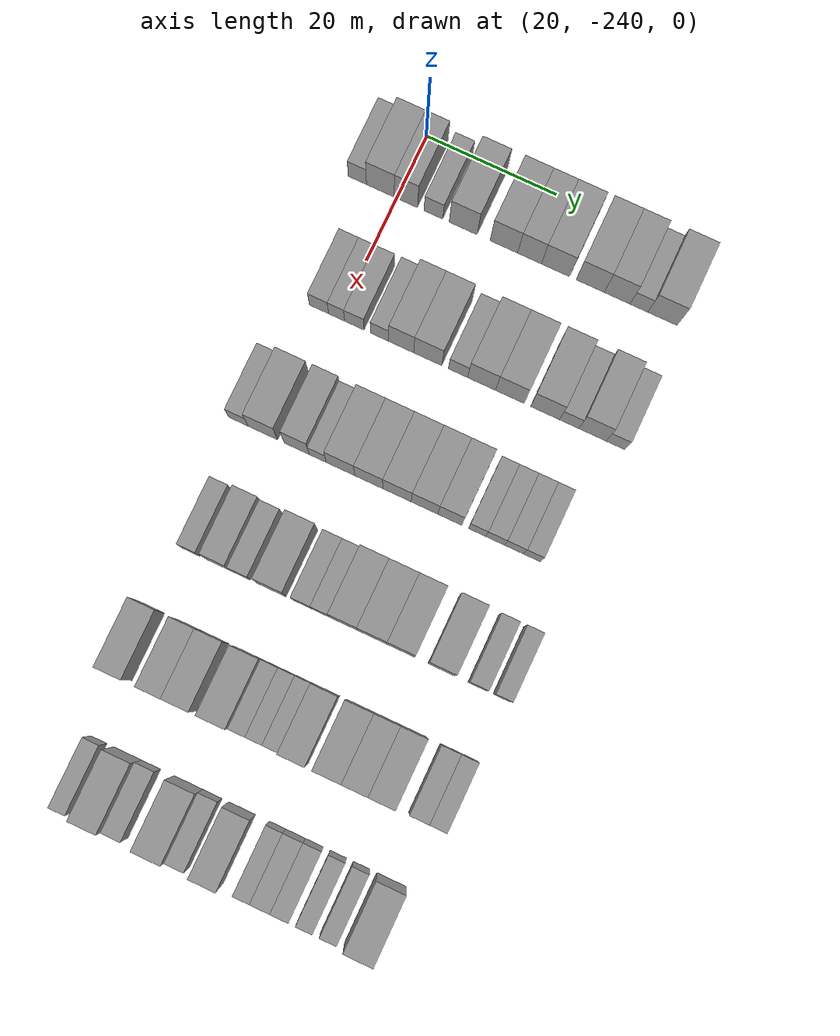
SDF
<sdf version="1.6">
 <world name="default">
  <model name="building_25">
   <static>1</static>
   <pose>25.0000 -246.0931 0 0.000000 0.000000 0.000000</pose>
   <link name="link">
    <pose>0 0 3.00 0 0 0</pose>
    <collision name="collision"><geometry><box><size>10.0000 2.7993 6.0000</size></box></geometry></collision>
    <visual name="visual">
     <cast_shadows>0</cast_shadows>
     <geometry><box><size>10.0000 2.7993 6.0000</size></box></geometry>
     <material>
      <script>
       <uri>model://grey_wall/materials/scripts</uri>
       <uri>model://grey_wall/materials/textures</uri>
       <name>vrc/grey_wall</name>
      </script>
     </material>
    </visual>
   </link>
  </model>
  <model name="building_26">
   <static>1</static>
   <pose>25.0000 -242.5474 0 0.000000 0.000000 0.000000</pose>
   <link name="link">
    <pose>0 0 4.50 0 0 0</pose>
    <collision name="collision"><geometry><box><size>10.0000 4.2921 9.0000</size></box></geometry></collision>
    <visual name="visual">
     <cast_shadows>0</cast_shadows>
     <geometry><box><size>10.0000 4.2921 9.0000</size></box></geometry>
     <material>
      <script>
       <uri>model://grey_wall/materials/scripts</uri>
       <uri>model://grey_wall/materials/textures</uri>
       <name>vrc/grey_wall</name>
      </script>
     </material>
    </visual>
   </link>
  </model>
  <model name="building_27">
   <static>1</static>
   <pose>25.0000 -238.5943 0 0.000000 0.000000 0.000000</pose>
   <link name="link">
    <pose>0 0 4.50 0 0 0</pose>
    <collision name="collision"><geometry><box><size>10.0000 3.6142 9.0000</size></box></geometry></collision>
    <visual name="visual">
     <cast_shadows>0</cast_shadows>
     <geometry><box><size>10.0000 3.6142 9.0000</size></box></geometry>
     <material>
      <script>
       <uri>model://grey_wall/materials/scripts</uri>
       <uri>model://grey_wall/materials/textures</uri>
       <name>vrc/grey_wall</name>
      </script>
     </material>
    </visual>
   </link>
  </model>
  <model name="building_28">
   <static>1</static>
   <pose>25.0000 -234.3465 0 0.000000 0.000000 0.000000</pose>
   <link name="link">
    <pose>0 0 3.00 0 0 0</pose>
    <collision name="collision"><geometry><box><size>10.0000 2.8813 6.0000</size></box></geometry></collision>
    <visual name="visual">
     <cast_shadows>0</cast_shadows>
     <geometry><box><size>10.0000 2.8813 6.0000</size></box></geometry>
     <material>
      <script>
       <uri>model://grey_wall/materials/scripts</uri>
       <uri>model://grey_wall/materials/textures</uri>
       <name>vrc/grey_wall</name>
      </script>
     </material>
    </visual>
   </link>
  </model>
  <model name="building_29">
   <static>1</static>
   <pose>25.0000 -229.7559 0 0.000000 0.000000 0.000000</pose>
   <link name="link">
    <pose>0 0 4.50 0 0 0</pose>
    <collision name="collision"><geometry><box><size>10.0000 4.2998 9.0000</size></box></geometry></collision>
    <visual name="visual">
     <cast_shadows>0</cast_shadows>
     <geometry><box><size>10.0000 4.2998 9.0000</size></box></geometry>
     <material>
      <script>
       <uri>model://grey_wall/materials/scripts</uri>
       <uri>model://grey_wall/materials/textures</uri>
       <name>vrc/grey_wall</name>
      </script>
     </material>
    </visual>
   </link>
  </model>
  <model name="building_30">
   <static>1</static>
   <pose>25.0000 -223.4997 0 0.000000 0.000000 0.000000</pose>
   <link name="link">
    <pose>0 0 4.50 0 0 0</pose>
    <collision name="collision"><geometry><box><size>10.0000 4.2128 9.0000</size></box></geometry></collision>
    <visual name="visual">
     <cast_shadows>0</cast_shadows>
     <geometry><box><size>10.0000 4.2128 9.0000</size></box></geometry>
     <material>
      <script>
       <uri>model://grey_wall/materials/scripts</uri>
       <uri>model://grey_wall/materials/textures</uri>
       <name>vrc/grey_wall</name>
      </script>
     </material>
    </visual>
   </link>
  </model>
  <model name="building_31">
   <static>1</static>
   <pose>25.0000 -219.5644 0 0.000000 0.000000 0.000000</pose>
   <link name="link">
    <pose>0 0 4.50 0 0 0</pose>
    <collision name="collision"><geometry><box><size>10.0000 3.6578 9.0000</size></box></geometry></collision>
    <visual name="visual">
     <cast_shadows>0</cast_shadows>
     <geometry><box><size>10.0000 3.6578 9.0000</size></box></geometry>
     <material>
      <script>
       <uri>model://grey_wall/materials/scripts</uri>
       <uri>model://grey_wall/materials/textures</uri>
       <name>vrc/grey_wall</name>
      </script>
     </material>
    </visual>
   </link>
  </model>
  <model name="building_32">
   <static>1</static>
   <pose>25.0000 -215.5783 0 0.000000 0.000000 0.000000</pose>
   <link name="link">
    <pose>0 0 4.50 0 0 0</pose>
    <collision name="collision"><geometry><box><size>10.0000 4.3143 9.0000</size></box></geometry></collision>
    <visual name="visual">
     <cast_shadows>0</cast_shadows>
     <geometry><box><size>10.0000 4.3143 9.0000</size></box></geometry>
     <material>
      <script>
       <uri>model://grey_wall/materials/scripts</uri>
       <uri>model://grey_wall/materials/textures</uri>
       <name>vrc/grey_wall</name>
      </script>
     </material>
    </visual>
   </link>
  </model>
  <model name="building_33">
   <static>1</static>
   <pose>25.0000 -210.2812 0 0.000000 0.000000 0.000000</pose>
   <link name="link">
    <pose>0 0 4.50 0 0 0</pose>
    <collision name="collision"><geometry><box><size>10.0000 4.2799 9.0000</size></box></geometry></collision>
    <visual name="visual">
     <cast_shadows>0</cast_shadows>
     <geometry><box><size>10.0000 4.2799 9.0000</size></box></geometry>
     <material>
      <script>
       <uri>model://grey_wall/materials/scripts</uri>
       <uri>model://grey_wall/materials/textures</uri>
       <name>vrc/grey_wall</name>
      </script>
     </material>
    </visual>
   </link>
  </model>
  <model name="building_34">
   <static>1</static>
   <pose>25.0000 -206.1762 0 0.000000 0.000000 0.000000</pose>
   <link name="link">
    <pose>0 0 4.50 0 0 0</pose>
    <collision name="collision"><geometry><box><size>10.0000 3.9302 9.0000</size></box></geometry></collision>
    <visual name="visual">
     <cast_shadows>0</cast_shadows>
     <geometry><box><size>10.0000 3.9302 9.0000</size></box></geometry>
     <material>
      <script>
       <uri>model://grey_wall/materials/scripts</uri>
       <uri>model://grey_wall/materials/textures</uri>
       <name>vrc/grey_wall</name>
      </script>
     </material>
    </visual>
   </link>
  </model>
  <model name="building_35">
   <static>1</static>
   <pose>25.0000 -202.8672 0 0.000000 0.000000 0.000000</pose>
   <link name="link">
    <pose>0 0 3.00 0 0 0</pose>
    <collision name="collision"><geometry><box><size>10.0000 2.6878 6.0000</size></box></geometry></collision>
    <visual name="visual">
     <cast_shadows>0</cast_shadows>
     <geometry><box><size>10.0000 2.6878 6.0000</size></box></geometry>
     <material>
      <script>
       <uri>model://grey_wall/materials/scripts</uri>
       <uri>model://grey_wall/materials/textures</uri>
       <name>vrc/grey_wall</name>
      </script>
     </material>
    </visual>
   </link>
  </model>
  <model name="building_36">
   <static>1</static>
   <pose>25.0000 -199.2933 0 0.000000 0.000000 0.000000</pose>
   <link name="link">
    <pose>0 0 4.50 0 0 0</pose>
    <collision name="collision"><geometry><box><size>10.0000 4.4602 9.0000</size></box></geometry></collision>
    <visual name="visual">
     <cast_shadows>0</cast_shadows>
     <geometry><box><size>10.0000 4.4602 9.0000</size></box></geometry>
     <material>
      <script>
       <uri>model://grey_wall/materials/scripts</uri>
       <uri>model://grey_wall/materials/textures</uri>
       <name>vrc/grey_wall</name>
      </script>
     </material>
    </visual>
   </link>
  </model>
  <model name="building_196">
   <static>1</static>
   <pose>44.0000 -243.0084 0 0.000000 0.000000 0.000000</pose>
   <link name="link">
    <pose>0 0 3.00 0 0 0</pose>
    <collision name="collision"><geometry><box><size>10.0000 2.9527 6.0000</size></box></geometry></collision>
    <visual name="visual">
     <cast_shadows>0</cast_shadows>
     <geometry><box><size>10.0000 2.9527 6.0000</size></box></geometry>
     <material>
      <script>
       <uri>model://grey_wall/materials/scripts</uri>
       <uri>model://grey_wall/materials/textures</uri>
       <name>vrc/grey_wall</name>
      </script>
     </material>
    </visual>
   </link>
  </model>
  <model name="building_197">
   <static>1</static>
   <pose>44.0000 -240.3116 0 0.000000 0.000000 0.000000</pose>
   <link name="link">
    <pose>0 0 3.00 0 0 0</pose>
    <collision name="collision"><geometry><box><size>10.0000 2.4408 6.0000</size></box></geometry></collision>
    <visual name="visual">
     <cast_shadows>0</cast_shadows>
     <geometry><box><size>10.0000 2.4408 6.0000</size></box></geometry>
     <material>
      <script>
       <uri>model://grey_wall/materials/scripts</uri>
       <uri>model://grey_wall/materials/textures</uri>
       <name>vrc/grey_wall</name>
      </script>
     </material>
    </visual>
   </link>
  </model>
  <model name="building_198">
   <static>1</static>
   <pose>44.0000 -237.5992 0 0.000000 0.000000 0.000000</pose>
   <link name="link">
    <pose>0 0 3.00 0 0 0</pose>
    <collision name="collision"><geometry><box><size>10.0000 2.9841 6.0000</size></box></geometry></collision>
    <visual name="visual">
     <cast_shadows>0</cast_shadows>
     <geometry><box><size>10.0000 2.9841 6.0000</size></box></geometry>
     <material>
      <script>
       <uri>model://grey_wall/materials/scripts</uri>
       <uri>model://grey_wall/materials/textures</uri>
       <name>vrc/grey_wall</name>
      </script>
     </material>
    </visual>
   </link>
  </model>
  <model name="building_199">
   <static>1</static>
   <pose>44.0000 -233.7240 0 0.000000 0.000000 0.000000</pose>
   <link name="link">
    <pose>0 0 3.00 0 0 0</pose>
    <collision name="collision"><geometry><box><size>10.0000 2.7663 6.0000</size></box></geometry></collision>
    <visual name="visual">
     <cast_shadows>0</cast_shadows>
     <geometry><box><size>10.0000 2.7663 6.0000</size></box></geometry>
     <material>
      <script>
       <uri>model://grey_wall/materials/scripts</uri>
       <uri>model://grey_wall/materials/textures</uri>
       <name>vrc/grey_wall</name>
      </script>
     </material>
    </visual>
   </link>
  </model>
  <model name="building_200">
   <static>1</static>
   <pose>44.0000 -230.4372 0 0.000000 0.000000 0.000000</pose>
   <link name="link">
    <pose>0 0 4.50 0 0 0</pose>
    <collision name="collision"><geometry><box><size>10.0000 3.8072 9.0000</size></box></geometry></collision>
    <visual name="visual">
     <cast_shadows>0</cast_shadows>
     <geometry><box><size>10.0000 3.8072 9.0000</size></box></geometry>
     <material>
      <script>
       <uri>model://grey_wall/materials/scripts</uri>
       <uri>model://grey_wall/materials/textures</uri>
       <name>vrc/grey_wall</name>
      </script>
     </material>
    </visual>
   </link>
  </model>
  <model name="building_201">
   <static>1</static>
   <pose>44.0000 -226.3860 0 0.000000 0.000000 0.000000</pose>
   <link name="link">
    <pose>0 0 4.50 0 0 0</pose>
    <collision name="collision"><geometry><box><size>10.0000 4.2951 9.0000</size></box></geometry></collision>
    <visual name="visual">
     <cast_shadows>0</cast_shadows>
     <geometry><box><size>10.0000 4.2951 9.0000</size></box></geometry>
     <material>
      <script>
       <uri>model://grey_wall/materials/scripts</uri>
       <uri>model://grey_wall/materials/textures</uri>
       <name>vrc/grey_wall</name>
      </script>
     </material>
    </visual>
   </link>
  </model>
  <model name="building_202">
   <static>1</static>
   <pose>44.0000 -221.7757 0 0.000000 0.000000 0.000000</pose>
   <link name="link">
    <pose>0 0 3.00 0 0 0</pose>
    <collision name="collision"><geometry><box><size>10.0000 2.9257 6.0000</size></box></geometry></collision>
    <visual name="visual">
     <cast_shadows>0</cast_shadows>
     <geometry><box><size>10.0000 2.9257 6.0000</size></box></geometry>
     <material>
      <script>
       <uri>model://grey_wall/materials/scripts</uri>
       <uri>model://grey_wall/materials/textures</uri>
       <name>vrc/grey_wall</name>
      </script>
     </material>
    </visual>
   </link>
  </model>
  <model name="building_203">
   <static>1</static>
   <pose>44.0000 -218.1892 0 0.000000 0.000000 0.000000</pose>
   <link name="link">
    <pose>0 0 4.50 0 0 0</pose>
    <collision name="collision"><geometry><box><size>10.0000 4.2473 9.0000</size></box></geometry></collision>
    <visual name="visual">
     <cast_shadows>0</cast_shadows>
     <geometry><box><size>10.0000 4.2473 9.0000</size></box></geometry>
     <material>
      <script>
       <uri>model://grey_wall/materials/scripts</uri>
       <uri>model://grey_wall/materials/textures</uri>
       <name>vrc/grey_wall</name>
      </script>
     </material>
    </visual>
   </link>
  </model>
  <model name="building_204">
   <static>1</static>
   <pose>44.0000 -213.9029 0 0.000000 0.000000 0.000000</pose>
   <link name="link">
    <pose>0 0 4.50 0 0 0</pose>
    <collision name="collision"><geometry><box><size>10.0000 4.3253 9.0000</size></box></geometry></collision>
    <visual name="visual">
     <cast_shadows>0</cast_shadows>
     <geometry><box><size>10.0000 4.3253 9.0000</size></box></geometry>
     <material>
      <script>
       <uri>model://grey_wall/materials/scripts</uri>
       <uri>model://grey_wall/materials/textures</uri>
       <name>vrc/grey_wall</name>
      </script>
     </material>
    </visual>
   </link>
  </model>
  <model name="building_205">
   <static>1</static>
   <pose>44.0000 -208.5619 0 0.000000 0.000000 0.000000</pose>
   <link name="link">
    <pose>0 0 4.50 0 0 0</pose>
    <collision name="collision"><geometry><box><size>10.0000 4.3569 9.0000</size></box></geometry></collision>
    <visual name="visual">
     <cast_shadows>0</cast_shadows>
     <geometry><box><size>10.0000 4.3569 9.0000</size></box></geometry>
     <material>
      <script>
       <uri>model://grey_wall/materials/scripts</uri>
       <uri>model://grey_wall/materials/textures</uri>
       <name>vrc/grey_wall</name>
      </script>
     </material>
    </visual>
   </link>
  </model>
  <model name="building_206">
   <static>1</static>
   <pose>44.0000 -204.9178 0 0.000000 0.000000 0.000000</pose>
   <link name="link">
    <pose>0 0 3.00 0 0 0</pose>
    <collision name="collision"><geometry><box><size>10.0000 2.9314 6.0000</size></box></geometry></collision>
    <visual name="visual">
     <cast_shadows>0</cast_shadows>
     <geometry><box><size>10.0000 2.9314 6.0000</size></box></geometry>
     <material>
      <script>
       <uri>model://grey_wall/materials/scripts</uri>
       <uri>model://grey_wall/materials/textures</uri>
       <name>vrc/grey_wall</name>
      </script>
     </material>
    </visual>
   </link>
  </model>
  <model name="building_207">
   <static>1</static>
   <pose>44.0000 -201.3960 0 0.000000 0.000000 0.000000</pose>
   <link name="link">
    <pose>0 0 4.50 0 0 0</pose>
    <collision name="collision"><geometry><box><size>10.0000 4.1122 9.0000</size></box></geometry></collision>
    <visual name="visual">
     <cast_shadows>0</cast_shadows>
     <geometry><box><size>10.0000 4.1122 9.0000</size></box></geometry>
     <material>
      <script>
       <uri>model://grey_wall/materials/scripts</uri>
       <uri>model://grey_wall/materials/textures</uri>
       <name>vrc/grey_wall</name>
      </script>
     </material>
    </visual>
   </link>
  </model>
  <model name="building_208">
   <static>1</static>
   <pose>44.0000 -197.9225 0 0.000000 0.000000 0.000000</pose>
   <link name="link">
    <pose>0 0 3.00 0 0 0</pose>
    <collision name="collision"><geometry><box><size>10.0000 2.8347 6.0000</size></box></geometry></collision>
    <visual name="visual">
     <cast_shadows>0</cast_shadows>
     <geometry><box><size>10.0000 2.8347 6.0000</size></box></geometry>
     <material>
      <script>
       <uri>model://grey_wall/materials/scripts</uri>
       <uri>model://grey_wall/materials/textures</uri>
       <name>vrc/grey_wall</name>
      </script>
     </material>
    </visual>
   </link>
  </model>
  <model name="building_367">
   <static>1</static>
   <pose>63.0000 -246.2643 0 0.000000 0.000000 0.000000</pose>
   <link name="link">
    <pose>0 0 3.00 0 0 0</pose>
    <collision name="collision"><geometry><box><size>10.0000 2.9558 6.0000</size></box></geometry></collision>
    <visual name="visual">
     <cast_shadows>0</cast_shadows>
     <geometry><box><size>10.0000 2.9558 6.0000</size></box></geometry>
     <material>
      <script>
       <uri>model://grey_wall/materials/scripts</uri>
       <uri>model://grey_wall/materials/textures</uri>
       <name>vrc/grey_wall</name>
      </script>
     </material>
    </visual>
   </link>
  </model>
  <model name="building_368">
   <static>1</static>
   <pose>63.0000 -242.5374 0 0.000000 0.000000 0.000000</pose>
   <link name="link">
    <pose>0 0 4.50 0 0 0</pose>
    <collision name="collision"><geometry><box><size>10.0000 4.4980 9.0000</size></box></geometry></collision>
    <visual name="visual">
     <cast_shadows>0</cast_shadows>
     <geometry><box><size>10.0000 4.4980 9.0000</size></box></geometry>
     <material>
      <script>
       <uri>model://grey_wall/materials/scripts</uri>
       <uri>model://grey_wall/materials/textures</uri>
       <name>vrc/grey_wall</name>
      </script>
     </material>
    </visual>
   </link>
  </model>
  <model name="building_369">
   <static>1</static>
   <pose>63.0000 -237.3913 0 0.000000 0.000000 0.000000</pose>
   <link name="link">
    <pose>0 0 4.50 0 0 0</pose>
    <collision name="collision"><geometry><box><size>10.0000 3.7943 9.0000</size></box></geometry></collision>
    <visual name="visual">
     <cast_shadows>0</cast_shadows>
     <geometry><box><size>10.0000 3.7943 9.0000</size></box></geometry>
     <material>
      <script>
       <uri>model://grey_wall/materials/scripts</uri>
       <uri>model://grey_wall/materials/textures</uri>
       <name>vrc/grey_wall</name>
      </script>
     </material>
    </visual>
   </link>
  </model>
  <model name="building_370">
   <static>1</static>
   <pose>63.0000 -234.1962 0 0.000000 0.000000 0.000000</pose>
   <link name="link">
    <pose>0 0 3.00 0 0 0</pose>
    <collision name="collision"><geometry><box><size>10.0000 2.5958 6.0000</size></box></geometry></collision>
    <visual name="visual">
     <cast_shadows>0</cast_shadows>
     <geometry><box><size>10.0000 2.5958 6.0000</size></box></geometry>
     <material>
      <script>
       <uri>model://grey_wall/materials/scripts</uri>
       <uri>model://grey_wall/materials/textures</uri>
       <name>vrc/grey_wall</name>
      </script>
     </material>
    </visual>
   </link>
  </model>
  <model name="building_371">
   <static>1</static>
   <pose>63.0000 -230.7413 0 0.000000 0.000000 0.000000</pose>
   <link name="link">
    <pose>0 0 4.50 0 0 0</pose>
    <collision name="collision"><geometry><box><size>10.0000 4.3141 9.0000</size></box></geometry></collision>
    <visual name="visual">
     <cast_shadows>0</cast_shadows>
     <geometry><box><size>10.0000 4.3141 9.0000</size></box></geometry>
     <material>
      <script>
       <uri>model://grey_wall/materials/scripts</uri>
       <uri>model://grey_wall/materials/textures</uri>
       <name>vrc/grey_wall</name>
      </script>
     </material>
    </visual>
   </link>
  </model>
  <model name="building_372">
   <static>1</static>
   <pose>63.0000 -226.4671 0 0.000000 0.000000 0.000000</pose>
   <link name="link">
    <pose>0 0 4.50 0 0 0</pose>
    <collision name="collision"><geometry><box><size>10.0000 4.2344 9.0000</size></box></geometry></collision>
    <visual name="visual">
     <cast_shadows>0</cast_shadows>
     <geometry><box><size>10.0000 4.2344 9.0000</size></box></geometry>
     <material>
      <script>
       <uri>model://grey_wall/materials/scripts</uri>
       <uri>model://grey_wall/materials/textures</uri>
       <name>vrc/grey_wall</name>
      </script>
     </material>
    </visual>
   </link>
  </model>
  <model name="building_373">
   <static>1</static>
   <pose>63.0000 -222.2003 0 0.000000 0.000000 0.000000</pose>
   <link name="link">
    <pose>0 0 4.50 0 0 0</pose>
    <collision name="collision"><geometry><box><size>10.0000 4.2993 9.0000</size></box></geometry></collision>
    <visual name="visual">
     <cast_shadows>0</cast_shadows>
     <geometry><box><size>10.0000 4.2993 9.0000</size></box></geometry>
     <material>
      <script>
       <uri>model://grey_wall/materials/scripts</uri>
       <uri>model://grey_wall/materials/textures</uri>
       <name>vrc/grey_wall</name>
      </script>
     </material>
    </visual>
   </link>
  </model>
  <model name="building_374">
   <static>1</static>
   <pose>63.0000 -218.0457 0 0.000000 0.000000 0.000000</pose>
   <link name="link">
    <pose>0 0 4.50 0 0 0</pose>
    <collision name="collision"><geometry><box><size>10.0000 4.0099 9.0000</size></box></geometry></collision>
    <visual name="visual">
     <cast_shadows>0</cast_shadows>
     <geometry><box><size>10.0000 4.0099 9.0000</size></box></geometry>
     <material>
      <script>
       <uri>model://grey_wall/materials/scripts</uri>
       <uri>model://grey_wall/materials/textures</uri>
       <name>vrc/grey_wall</name>
      </script>
     </material>
    </visual>
   </link>
  </model>
  <model name="building_375">
   <static>1</static>
   <pose>63.0000 -214.2318 0 0.000000 0.000000 0.000000</pose>
   <link name="link">
    <pose>0 0 4.50 0 0 0</pose>
    <collision name="collision"><geometry><box><size>10.0000 3.6179 9.0000</size></box></geometry></collision>
    <visual name="visual">
     <cast_shadows>0</cast_shadows>
     <geometry><box><size>10.0000 3.6179 9.0000</size></box></geometry>
     <material>
      <script>
       <uri>model://grey_wall/materials/scripts</uri>
       <uri>model://grey_wall/materials/textures</uri>
       <name>vrc/grey_wall</name>
      </script>
     </material>
    </visual>
   </link>
  </model>
  <model name="building_376">
   <static>1</static>
   <pose>63.0000 -210.1244 0 0.000000 0.000000 0.000000</pose>
   <link name="link">
    <pose>0 0 3.00 0 0 0</pose>
    <collision name="collision"><geometry><box><size>10.0000 2.5969 6.0000</size></box></geometry></collision>
    <visual name="visual">
     <cast_shadows>0</cast_shadows>
     <geometry><box><size>10.0000 2.5969 6.0000</size></box></geometry>
     <material>
      <script>
       <uri>model://grey_wall/materials/scripts</uri>
       <uri>model://grey_wall/materials/textures</uri>
       <name>vrc/grey_wall</name>
      </script>
     </material>
    </visual>
   </link>
  </model>
  <model name="building_377">
   <static>1</static>
   <pose>63.0000 -207.4161 0 0.000000 0.000000 0.000000</pose>
   <link name="link">
    <pose>0 0 3.00 0 0 0</pose>
    <collision name="collision"><geometry><box><size>10.0000 2.8196 6.0000</size></box></geometry></collision>
    <visual name="visual">
     <cast_shadows>0</cast_shadows>
     <geometry><box><size>10.0000 2.8196 6.0000</size></box></geometry>
     <material>
      <script>
       <uri>model://grey_wall/materials/scripts</uri>
       <uri>model://grey_wall/materials/textures</uri>
       <name>vrc/grey_wall</name>
      </script>
     </material>
    </visual>
   </link>
  </model>
  <model name="building_378">
   <static>1</static>
   <pose>63.0000 -204.5809 0 0.000000 0.000000 0.000000</pose>
   <link name="link">
    <pose>0 0 3.00 0 0 0</pose>
    <collision name="collision"><geometry><box><size>10.0000 2.8508 6.0000</size></box></geometry></collision>
    <visual name="visual">
     <cast_shadows>0</cast_shadows>
     <geometry><box><size>10.0000 2.8508 6.0000</size></box></geometry>
     <material>
      <script>
       <uri>model://grey_wall/materials/scripts</uri>
       <uri>model://grey_wall/materials/textures</uri>
       <name>vrc/grey_wall</name>
      </script>
     </material>
    </visual>
   </link>
  </model>
  <model name="building_379">
   <static>1</static>
   <pose>63.0000 -201.9021 0 0.000000 0.000000 0.000000</pose>
   <link name="link">
    <pose>0 0 3.00 0 0 0</pose>
    <collision name="collision"><geometry><box><size>10.0000 2.5069 6.0000</size></box></geometry></collision>
    <visual name="visual">
     <cast_shadows>0</cast_shadows>
     <geometry><box><size>10.0000 2.5069 6.0000</size></box></geometry>
     <material>
      <script>
       <uri>model://grey_wall/materials/scripts</uri>
       <uri>model://grey_wall/materials/textures</uri>
       <name>vrc/grey_wall</name>
      </script>
     </material>
    </visual>
   </link>
  </model>
  <model name="building_549">
   <static>1</static>
   <pose>82.0000 -244.2648 0 0.000000 0.000000 0.000000</pose>
   <link name="link">
    <pose>0 0 3.00 0 0 0</pose>
    <collision name="collision"><geometry><box><size>10.0000 2.7440 6.0000</size></box></geometry></collision>
    <visual name="visual">
     <cast_shadows>0</cast_shadows>
     <geometry><box><size>10.0000 2.7440 6.0000</size></box></geometry>
     <material>
      <script>
       <uri>model://grey_wall/materials/scripts</uri>
       <uri>model://grey_wall/materials/textures</uri>
       <name>vrc/grey_wall</name>
      </script>
     </material>
    </visual>
   </link>
  </model>
  <model name="building_550">
   <static>1</static>
   <pose>82.0000 -240.0662 0 0.000000 0.000000 0.000000</pose>
   <link name="link">
    <pose>0 0 4.50 0 0 0</pose>
    <collision name="collision"><geometry><box><size>10.0000 3.6531 9.0000</size></box></geometry></collision>
    <visual name="visual">
     <cast_shadows>0</cast_shadows>
     <geometry><box><size>10.0000 3.6531 9.0000</size></box></geometry>
     <material>
      <script>
       <uri>model://grey_wall/materials/scripts</uri>
       <uri>model://grey_wall/materials/textures</uri>
       <name>vrc/grey_wall</name>
      </script>
     </material>
    </visual>
   </link>
  </model>
  <model name="building_551">
   <static>1</static>
   <pose>82.0000 -236.7481 0 0.000000 0.000000 0.000000</pose>
   <link name="link">
    <pose>0 0 3.00 0 0 0</pose>
    <collision name="collision"><geometry><box><size>10.0000 2.9830 6.0000</size></box></geometry></collision>
    <visual name="visual">
     <cast_shadows>0</cast_shadows>
     <geometry><box><size>10.0000 2.9830 6.0000</size></box></geometry>
     <material>
      <script>
       <uri>model://grey_wall/materials/scripts</uri>
       <uri>model://grey_wall/materials/textures</uri>
       <name>vrc/grey_wall</name>
      </script>
     </material>
    </visual>
   </link>
  </model>
  <model name="building_552">
   <static>1</static>
   <pose>82.0000 -232.0917 0 0.000000 0.000000 0.000000</pose>
   <link name="link">
    <pose>0 0 4.50 0 0 0</pose>
    <collision name="collision"><geometry><box><size>10.0000 4.3299 9.0000</size></box></geometry></collision>
    <visual name="visual">
     <cast_shadows>0</cast_shadows>
     <geometry><box><size>10.0000 4.3299 9.0000</size></box></geometry>
     <material>
      <script>
       <uri>model://grey_wall/materials/scripts</uri>
       <uri>model://grey_wall/materials/textures</uri>
       <name>vrc/grey_wall</name>
      </script>
     </material>
    </visual>
   </link>
  </model>
  <model name="building_553">
   <static>1</static>
   <pose>82.0000 -227.4940 0 0.000000 0.000000 0.000000</pose>
   <link name="link">
    <pose>0 0 3.00 0 0 0</pose>
    <collision name="collision"><geometry><box><size>10.0000 2.8654 6.0000</size></box></geometry></collision>
    <visual name="visual">
     <cast_shadows>0</cast_shadows>
     <geometry><box><size>10.0000 2.8654 6.0000</size></box></geometry>
     <material>
      <script>
       <uri>model://grey_wall/materials/scripts</uri>
       <uri>model://grey_wall/materials/textures</uri>
       <name>vrc/grey_wall</name>
      </script>
     </material>
    </visual>
   </link>
  </model>
  <model name="building_554">
   <static>1</static>
   <pose>82.0000 -224.7215 0 0.000000 0.000000 0.000000</pose>
   <link name="link">
    <pose>0 0 3.00 0 0 0</pose>
    <collision name="collision"><geometry><box><size>10.0000 2.6796 6.0000</size></box></geometry></collision>
    <visual name="visual">
     <cast_shadows>0</cast_shadows>
     <geometry><box><size>10.0000 2.6796 6.0000</size></box></geometry>
     <material>
      <script>
       <uri>model://grey_wall/materials/scripts</uri>
       <uri>model://grey_wall/materials/textures</uri>
       <name>vrc/grey_wall</name>
      </script>
     </material>
    </visual>
   </link>
  </model>
  <model name="building_555">
   <static>1</static>
   <pose>82.0000 -221.2757 0 0.000000 0.000000 0.000000</pose>
   <link name="link">
    <pose>0 0 4.50 0 0 0</pose>
    <collision name="collision"><geometry><box><size>10.0000 4.2120 9.0000</size></box></geometry></collision>
    <visual name="visual">
     <cast_shadows>0</cast_shadows>
     <geometry><box><size>10.0000 4.2120 9.0000</size></box></geometry>
     <material>
      <script>
       <uri>model://grey_wall/materials/scripts</uri>
       <uri>model://grey_wall/materials/textures</uri>
       <name>vrc/grey_wall</name>
      </script>
     </material>
    </visual>
   </link>
  </model>
  <model name="building_556">
   <static>1</static>
   <pose>82.0000 -216.9725 0 0.000000 0.000000 0.000000</pose>
   <link name="link">
    <pose>0 0 4.50 0 0 0</pose>
    <collision name="collision"><geometry><box><size>10.0000 4.3943 9.0000</size></box></geometry></collision>
    <visual name="visual">
     <cast_shadows>0</cast_shadows>
     <geometry><box><size>10.0000 4.3943 9.0000</size></box></geometry>
     <material>
      <script>
       <uri>model://grey_wall/materials/scripts</uri>
       <uri>model://grey_wall/materials/textures</uri>
       <name>vrc/grey_wall</name>
      </script>
     </material>
    </visual>
   </link>
  </model>
  <model name="building_557">
   <static>1</static>
   <pose>82.0000 -212.7305 0 0.000000 0.000000 0.000000</pose>
   <link name="link">
    <pose>0 0 4.50 0 0 0</pose>
    <collision name="collision"><geometry><box><size>10.0000 4.0896 9.0000</size></box></geometry></collision>
    <visual name="visual">
     <cast_shadows>0</cast_shadows>
     <geometry><box><size>10.0000 4.0896 9.0000</size></box></geometry>
     <material>
      <script>
       <uri>model://grey_wall/materials/scripts</uri>
       <uri>model://grey_wall/materials/textures</uri>
       <name>vrc/grey_wall</name>
      </script>
     </material>
    </visual>
   </link>
  </model>
  <model name="building_558">
   <static>1</static>
   <pose>82.0000 -206.7186 0 0.000000 0.000000 0.000000</pose>
   <link name="link">
    <pose>0 0 4.50 0 0 0</pose>
    <collision name="collision"><geometry><box><size>10.0000 3.9342 9.0000</size></box></geometry></collision>
    <visual name="visual">
     <cast_shadows>0</cast_shadows>
     <geometry><box><size>10.0000 3.9342 9.0000</size></box></geometry>
     <material>
      <script>
       <uri>model://grey_wall/materials/scripts</uri>
       <uri>model://grey_wall/materials/textures</uri>
       <name>vrc/grey_wall</name>
      </script>
     </material>
    </visual>
   </link>
  </model>
  <model name="building_559">
   <static>1</static>
   <pose>82.0000 -201.3870 0 0.000000 0.000000 0.000000</pose>
   <link name="link">
    <pose>0 0 3.00 0 0 0</pose>
    <collision name="collision"><geometry><box><size>10.0000 2.7289 6.0000</size></box></geometry></collision>
    <visual name="visual">
     <cast_shadows>0</cast_shadows>
     <geometry><box><size>10.0000 2.7289 6.0000</size></box></geometry>
     <material>
      <script>
       <uri>model://grey_wall/materials/scripts</uri>
       <uri>model://grey_wall/materials/textures</uri>
       <name>vrc/grey_wall</name>
      </script>
     </material>
    </visual>
   </link>
  </model>
  <model name="building_560">
   <static>1</static>
   <pose>82.0000 -197.7768 0 0.000000 0.000000 0.000000</pose>
   <link name="link">
    <pose>0 0 3.00 0 0 0</pose>
    <collision name="collision"><geometry><box><size>10.0000 2.4915 6.0000</size></box></geometry></collision>
    <visual name="visual">
     <cast_shadows>0</cast_shadows>
     <geometry><box><size>10.0000 2.4915 6.0000</size></box></geometry>
     <material>
      <script>
       <uri>model://grey_wall/materials/scripts</uri>
       <uri>model://grey_wall/materials/textures</uri>
       <name>vrc/grey_wall</name>
      </script>
     </material>
    </visual>
   </link>
  </model>
  <model name="building_720">
   <static>1</static>
   <pose>101.0000 -245.8715 0 0.000000 0.000000 0.000000</pose>
   <link name="link">
    <pose>0 0 4.50 0 0 0</pose>
    <collision name="collision"><geometry><box><size>10.0000 3.9570 9.0000</size></box></geometry></collision>
    <visual name="visual">
     <cast_shadows>0</cast_shadows>
     <geometry><box><size>10.0000 3.9570 9.0000</size></box></geometry>
     <material>
      <script>
       <uri>model://grey_wall/materials/scripts</uri>
       <uri>model://grey_wall/materials/textures</uri>
       <name>vrc/grey_wall</name>
      </script>
     </material>
    </visual>
   </link>
  </model>
  <model name="building_721">
   <static>1</static>
   <pose>101.0000 -240.0434 0 0.000000 0.000000 0.000000</pose>
   <link name="link">
    <pose>0 0 4.50 0 0 0</pose>
    <collision name="collision"><geometry><box><size>10.0000 3.6993 9.0000</size></box></geometry></collision>
    <visual name="visual">
     <cast_shadows>0</cast_shadows>
     <geometry><box><size>10.0000 3.6993 9.0000</size></box></geometry>
     <material>
      <script>
       <uri>model://grey_wall/materials/scripts</uri>
       <uri>model://grey_wall/materials/textures</uri>
       <name>vrc/grey_wall</name>
      </script>
     </material>
    </visual>
   </link>
  </model>
  <model name="building_722">
   <static>1</static>
   <pose>101.0000 -236.1895 0 0.000000 0.000000 0.000000</pose>
   <link name="link">
    <pose>0 0 4.50 0 0 0</pose>
    <collision name="collision"><geometry><box><size>10.0000 4.0083 9.0000</size></box></geometry></collision>
    <visual name="visual">
     <cast_shadows>0</cast_shadows>
     <geometry><box><size>10.0000 4.0083 9.0000</size></box></geometry>
     <material>
      <script>
       <uri>model://grey_wall/materials/scripts</uri>
       <uri>model://grey_wall/materials/textures</uri>
       <name>vrc/grey_wall</name>
      </script>
     </material>
    </visual>
   </link>
  </model>
  <model name="building_723">
   <static>1</static>
   <pose>101.0000 -231.0649 0 0.000000 0.000000 0.000000</pose>
   <link name="link">
    <pose>0 0 4.50 0 0 0</pose>
    <collision name="collision"><geometry><box><size>10.0000 4.2409 9.0000</size></box></geometry></collision>
    <visual name="visual">
     <cast_shadows>0</cast_shadows>
     <geometry><box><size>10.0000 4.2409 9.0000</size></box></geometry>
     <material>
      <script>
       <uri>model://grey_wall/materials/scripts</uri>
       <uri>model://grey_wall/materials/textures</uri>
       <name>vrc/grey_wall</name>
      </script>
     </material>
    </visual>
   </link>
  </model>
  <model name="building_724">
   <static>1</static>
   <pose>101.0000 -227.6793 0 0.000000 0.000000 0.000000</pose>
   <link name="link">
    <pose>0 0 3.00 0 0 0</pose>
    <collision name="collision"><geometry><box><size>10.0000 2.5302 6.0000</size></box></geometry></collision>
    <visual name="visual">
     <cast_shadows>0</cast_shadows>
     <geometry><box><size>10.0000 2.5302 6.0000</size></box></geometry>
     <material>
      <script>
       <uri>model://grey_wall/materials/scripts</uri>
       <uri>model://grey_wall/materials/textures</uri>
       <name>vrc/grey_wall</name>
      </script>
     </material>
    </visual>
   </link>
  </model>
  <model name="building_725">
   <static>1</static>
   <pose>101.0000 -225.1898 0 0.000000 0.000000 0.000000</pose>
   <link name="link">
    <pose>0 0 3.00 0 0 0</pose>
    <collision name="collision"><geometry><box><size>10.0000 2.4489 6.0000</size></box></geometry></collision>
    <visual name="visual">
     <cast_shadows>0</cast_shadows>
     <geometry><box><size>10.0000 2.4489 6.0000</size></box></geometry>
     <material>
      <script>
       <uri>model://grey_wall/materials/scripts</uri>
       <uri>model://grey_wall/materials/textures</uri>
       <name>vrc/grey_wall</name>
      </script>
     </material>
    </visual>
   </link>
  </model>
  <model name="building_726">
   <static>1</static>
   <pose>101.0000 -222.7647 0 0.000000 0.000000 0.000000</pose>
   <link name="link">
    <pose>0 0 3.00 0 0 0</pose>
    <collision name="collision"><geometry><box><size>10.0000 2.4012 6.0000</size></box></geometry></collision>
    <visual name="visual">
     <cast_shadows>0</cast_shadows>
     <geometry><box><size>10.0000 2.4012 6.0000</size></box></geometry>
     <material>
      <script>
       <uri>model://grey_wall/materials/scripts</uri>
       <uri>model://grey_wall/materials/textures</uri>
       <name>vrc/grey_wall</name>
      </script>
     </material>
    </visual>
   </link>
  </model>
  <model name="building_727">
   <static>1</static>
   <pose>101.0000 -219.5807 0 0.000000 0.000000 0.000000</pose>
   <link name="link">
    <pose>0 0 4.50 0 0 0</pose>
    <collision name="collision"><geometry><box><size>10.0000 3.9669 9.0000</size></box></geometry></collision>
    <visual name="visual">
     <cast_shadows>0</cast_shadows>
     <geometry><box><size>10.0000 3.9669 9.0000</size></box></geometry>
     <material>
      <script>
       <uri>model://grey_wall/materials/scripts</uri>
       <uri>model://grey_wall/materials/textures</uri>
       <name>vrc/grey_wall</name>
      </script>
     </material>
    </visual>
   </link>
  </model>
  <model name="building_728">
   <static>1</static>
   <pose>101.0000 -214.5120 0 0.000000 0.000000 0.000000</pose>
   <link name="link">
    <pose>0 0 4.50 0 0 0</pose>
    <collision name="collision"><geometry><box><size>10.0000 4.1704 9.0000</size></box></geometry></collision>
    <visual name="visual">
     <cast_shadows>0</cast_shadows>
     <geometry><box><size>10.0000 4.1704 9.0000</size></box></geometry>
     <material>
      <script>
       <uri>model://grey_wall/materials/scripts</uri>
       <uri>model://grey_wall/materials/textures</uri>
       <name>vrc/grey_wall</name>
      </script>
     </material>
    </visual>
   </link>
  </model>
  <model name="building_729">
   <static>1</static>
   <pose>101.0000 -210.5205 0 0.000000 0.000000 0.000000</pose>
   <link name="link">
    <pose>0 0 4.50 0 0 0</pose>
    <collision name="collision"><geometry><box><size>10.0000 3.8128 9.0000</size></box></geometry></collision>
    <visual name="visual">
     <cast_shadows>0</cast_shadows>
     <geometry><box><size>10.0000 3.8128 9.0000</size></box></geometry>
     <material>
      <script>
       <uri>model://grey_wall/materials/scripts</uri>
       <uri>model://grey_wall/materials/textures</uri>
       <name>vrc/grey_wall</name>
      </script>
     </material>
    </visual>
   </link>
  </model>
  <model name="building_730">
   <static>1</static>
   <pose>101.0000 -206.6543 0 0.000000 0.000000 0.000000</pose>
   <link name="link">
    <pose>0 0 4.50 0 0 0</pose>
    <collision name="collision"><geometry><box><size>10.0000 3.9196 9.0000</size></box></geometry></collision>
    <visual name="visual">
     <cast_shadows>0</cast_shadows>
     <geometry><box><size>10.0000 3.9196 9.0000</size></box></geometry>
     <material>
      <script>
       <uri>model://grey_wall/materials/scripts</uri>
       <uri>model://grey_wall/materials/textures</uri>
       <name>vrc/grey_wall</name>
      </script>
     </material>
    </visual>
   </link>
  </model>
  <model name="building_731">
   <static>1</static>
   <pose>101.0000 -201.2530 0 0.000000 0.000000 0.000000</pose>
   <link name="link">
    <pose>0 0 3.00 0 0 0</pose>
    <collision name="collision"><geometry><box><size>10.0000 2.8828 6.0000</size></box></geometry></collision>
    <visual name="visual">
     <cast_shadows>0</cast_shadows>
     <geometry><box><size>10.0000 2.8828 6.0000</size></box></geometry>
     <material>
      <script>
       <uri>model://grey_wall/materials/scripts</uri>
       <uri>model://grey_wall/materials/textures</uri>
       <name>vrc/grey_wall</name>
      </script>
     </material>
    </visual>
   </link>
  </model>
  <model name="building_732">
   <static>1</static>
   <pose>101.0000 -198.5356 0 0.000000 0.000000 0.000000</pose>
   <link name="link">
    <pose>0 0 3.00 0 0 0</pose>
    <collision name="collision"><geometry><box><size>10.0000 2.5520 6.0000</size></box></geometry></collision>
    <visual name="visual">
     <cast_shadows>0</cast_shadows>
     <geometry><box><size>10.0000 2.5520 6.0000</size></box></geometry>
     <material>
      <script>
       <uri>model://grey_wall/materials/scripts</uri>
       <uri>model://grey_wall/materials/textures</uri>
       <name>vrc/grey_wall</name>
      </script>
     </material>
    </visual>
   </link>
  </model>
  <model name="building_896">
   <static>1</static>
   <pose>120.0000 -244.4230 0 0.000000 0.000000 0.000000</pose>
   <link name="link">
    <pose>0 0 3.00 0 0 0</pose>
    <collision name="collision"><geometry><box><size>10.0000 2.4464 6.0000</size></box></geometry></collision>
    <visual name="visual">
     <cast_shadows>0</cast_shadows>
     <geometry><box><size>10.0000 2.4464 6.0000</size></box></geometry>
     <material>
      <script>
       <uri>model://grey_wall/materials/scripts</uri>
       <uri>model://grey_wall/materials/textures</uri>
       <name>vrc/grey_wall</name>
      </script>
     </material>
    </visual>
   </link>
  </model>
  <model name="building_897">
   <static>1</static>
   <pose>120.0000 -240.1254 0 0.000000 0.000000 0.000000</pose>
   <link name="link">
    <pose>0 0 4.50 0 0 0</pose>
    <collision name="collision"><geometry><box><size>10.0000 4.1488 9.0000</size></box></geometry></collision>
    <visual name="visual">
     <cast_shadows>0</cast_shadows>
     <geometry><box><size>10.0000 4.1488 9.0000</size></box></geometry>
     <material>
      <script>
       <uri>model://grey_wall/materials/scripts</uri>
       <uri>model://grey_wall/materials/textures</uri>
       <name>vrc/grey_wall</name>
      </script>
     </material>
    </visual>
   </link>
  </model>
  <model name="building_898">
   <static>1</static>
   <pose>120.0000 -236.6124 0 0.000000 0.000000 0.000000</pose>
   <link name="link">
    <pose>0 0 3.00 0 0 0</pose>
    <collision name="collision"><geometry><box><size>10.0000 2.8771 6.0000</size></box></geometry></collision>
    <visual name="visual">
     <cast_shadows>0</cast_shadows>
     <geometry><box><size>10.0000 2.8771 6.0000</size></box></geometry>
     <material>
      <script>
       <uri>model://grey_wall/materials/scripts</uri>
       <uri>model://grey_wall/materials/textures</uri>
       <name>vrc/grey_wall</name>
      </script>
     </material>
    </visual>
   </link>
  </model>
  <model name="building_899">
   <static>1</static>
   <pose>120.0000 -231.0256 0 0.000000 0.000000 0.000000</pose>
   <link name="link">
    <pose>0 0 4.50 0 0 0</pose>
    <collision name="collision"><geometry><box><size>10.0000 4.2966 9.0000</size></box></geometry></collision>
    <visual name="visual">
     <cast_shadows>0</cast_shadows>
     <geometry><box><size>10.0000 4.2966 9.0000</size></box></geometry>
     <material>
      <script>
       <uri>model://grey_wall/materials/scripts</uri>
       <uri>model://grey_wall/materials/textures</uri>
       <name>vrc/grey_wall</name>
      </script>
     </material>
    </visual>
   </link>
  </model>
  <model name="building_900">
   <static>1</static>
   <pose>120.0000 -227.4569 0 0.000000 0.000000 0.000000</pose>
   <link name="link">
    <pose>0 0 3.00 0 0 0</pose>
    <collision name="collision"><geometry><box><size>10.0000 2.8407 6.0000</size></box></geometry></collision>
    <visual name="visual">
     <cast_shadows>0</cast_shadows>
     <geometry><box><size>10.0000 2.8407 6.0000</size></box></geometry>
     <material>
      <script>
       <uri>model://grey_wall/materials/scripts</uri>
       <uri>model://grey_wall/materials/textures</uri>
       <name>vrc/grey_wall</name>
      </script>
     </material>
    </visual>
   </link>
  </model>
  <model name="building_901">
   <static>1</static>
   <pose>120.0000 -223.0527 0 0.000000 0.000000 0.000000</pose>
   <link name="link">
    <pose>0 0 4.50 0 0 0</pose>
    <collision name="collision"><geometry><box><size>10.0000 3.9679 9.0000</size></box></geometry></collision>
    <visual name="visual">
     <cast_shadows>0</cast_shadows>
     <geometry><box><size>10.0000 3.9679 9.0000</size></box></geometry>
     <material>
      <script>
       <uri>model://grey_wall/materials/scripts</uri>
       <uri>model://grey_wall/materials/textures</uri>
       <name>vrc/grey_wall</name>
      </script>
     </material>
    </visual>
   </link>
  </model>
  <model name="building_902">
   <static>1</static>
   <pose>120.0000 -217.8477 0 0.000000 0.000000 0.000000</pose>
   <link name="link">
    <pose>0 0 3.00 0 0 0</pose>
    <collision name="collision"><geometry><box><size>10.0000 2.4421 6.0000</size></box></geometry></collision>
    <visual name="visual">
     <cast_shadows>0</cast_shadows>
     <geometry><box><size>10.0000 2.4421 6.0000</size></box></geometry>
     <material>
      <script>
       <uri>model://grey_wall/materials/scripts</uri>
       <uri>model://grey_wall/materials/textures</uri>
       <name>vrc/grey_wall</name>
      </script>
     </material>
    </visual>
   </link>
  </model>
  <model name="building_903">
   <static>1</static>
   <pose>120.0000 -215.1732 0 0.000000 0.000000 0.000000</pose>
   <link name="link">
    <pose>0 0 3.00 0 0 0</pose>
    <collision name="collision"><geometry><box><size>10.0000 2.9068 6.0000</size></box></geometry></collision>
    <visual name="visual">
     <cast_shadows>0</cast_shadows>
     <geometry><box><size>10.0000 2.9068 6.0000</size></box></geometry>
     <material>
      <script>
       <uri>model://grey_wall/materials/scripts</uri>
       <uri>model://grey_wall/materials/textures</uri>
       <name>vrc/grey_wall</name>
      </script>
     </material>
    </visual>
   </link>
  </model>
  <model name="building_904">
   <static>1</static>
   <pose>120.0000 -212.3829 0 0.000000 0.000000 0.000000</pose>
   <link name="link">
    <pose>0 0 3.00 0 0 0</pose>
    <collision name="collision"><geometry><box><size>10.0000 2.6740 6.0000</size></box></geometry></collision>
    <visual name="visual">
     <cast_shadows>0</cast_shadows>
     <geometry><box><size>10.0000 2.6740 6.0000</size></box></geometry>
     <material>
      <script>
       <uri>model://grey_wall/materials/scripts</uri>
       <uri>model://grey_wall/materials/textures</uri>
       <name>vrc/grey_wall</name>
      </script>
     </material>
    </visual>
   </link>
  </model>
  <model name="building_905">
   <static>1</static>
   <pose>120.0000 -208.8458 0 0.000000 0.000000 0.000000</pose>
   <link name="link">
    <pose>0 0 3.00 0 0 0</pose>
    <collision name="collision"><geometry><box><size>10.0000 2.4001 6.0000</size></box></geometry></collision>
    <visual name="visual">
     <cast_shadows>0</cast_shadows>
     <geometry><box><size>10.0000 2.4001 6.0000</size></box></geometry>
     <material>
      <script>
       <uri>model://grey_wall/materials/scripts</uri>
       <uri>model://grey_wall/materials/textures</uri>
       <name>vrc/grey_wall</name>
      </script>
     </material>
    </visual>
   </link>
  </model>
  <model name="building_906">
   <static>1</static>
   <pose>120.0000 -205.4232 0 0.000000 0.000000 0.000000</pose>
   <link name="link">
    <pose>0 0 3.00 0 0 0</pose>
    <collision name="collision"><geometry><box><size>10.0000 2.4453 6.0000</size></box></geometry></collision>
    <visual name="visual">
     <cast_shadows>0</cast_shadows>
     <geometry><box><size>10.0000 2.4453 6.0000</size></box></geometry>
     <material>
      <script>
       <uri>model://grey_wall/materials/scripts</uri>
       <uri>model://grey_wall/materials/textures</uri>
       <name>vrc/grey_wall</name>
      </script>
     </material>
    </visual>
   </link>
  </model>
  <model name="building_907">
   <static>1</static>
   <pose>120.0000 -201.0662 0 0.000000 0.000000 0.000000</pose>
   <link name="link">
    <pose>0 0 4.50 0 0 0</pose>
    <collision name="collision"><geometry><box><size>10.0000 4.2687 9.0000</size></box></geometry></collision>
    <visual name="visual">
     <cast_shadows>0</cast_shadows>
     <geometry><box><size>10.0000 4.2687 9.0000</size></box></geometry>
     <material>
      <script>
       <uri>model://grey_wall/materials/scripts</uri>
       <uri>model://grey_wall/materials/textures</uri>
       <name>vrc/grey_wall</name>
      </script>
     </material>
    </visual>
   </link>
  </model>
 </world>
</sdf>
